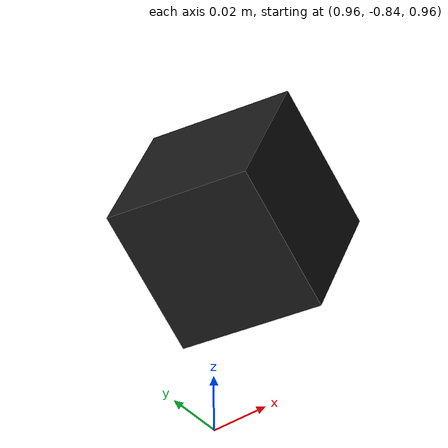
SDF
<?xml version="1.0" ?>
<sdf version="1.6">
  <world name="panda_demo">
    <physics name="1ms" type="ignored">
      <max_step_size>0.001</max_step_size>
      <real_time_factor>1.0</real_time_factor>
    </physics>

    <plugin filename="gz-sim-physics-system" name="gz::sim::systems::Physics"/>
    <plugin filename="gz-sim-scene-broadcaster-system" name="gz::sim::systems::SceneBroadcaster"/>
    <plugin filename="gz-sim-user-commands-system" name="gz::sim::systems::UserCommands"/>
    <plugin filename="gz-sim-sensors-system" name="gz::sim::systems::Sensors">
      <render_engine>ogre2</render_engine>
    </plugin>

    <light type="directional" name="sun">
      <cast_shadows>true</cast_shadows>
      <pose>0 0 10 0 0 0</pose>
      <diffuse>0.8 0.8 0.8 1</diffuse>
      <specular>0.2 0.2 0.2 1</specular>
      <attenuation>
        <range>1000</range>
        <constant>0.9</constant>
        <linear>0.01</linear>
        <quadratic>0.001</quadratic>
      </attenuation>
      <direction>-0.5 0.1 -0.9</direction>
    </light>

    <model name="ground_plane">
      <static>true</static>
      <link name="link">
        <collision name="collision">
          <geometry>
            <plane>
              <normal>0 0 1</normal>
              <size>100 100</size>
            </plane>
          </geometry>
        </collision>
        <visual name="visual">
          <geometry>
            <plane>
              <normal>0 0 1</normal>
              <size>100 100</size>
            </plane>
          </geometry>
          <material>
            <ambient>0.8 0.8 0.8 1</ambient>
            <diffuse>0.8 0.8 0.8 1</diffuse>
            <specular>0.8 0.8 0.8 1</specular>
          </material>
        </visual>
      </link>
    </model>

    <model name="static_camera">
      <static>true</static>
      <pose>1.0 -0.8 1.0 0 0.5 2.2</pose>
      <link name="camera_link">
        <visual name="body">
          <geometry>
            <box>
              <size>0.05 0.05 0.05</size>
            </box>
          </geometry>
          <material>
            <ambient>0.1 0.1 0.1 1</ambient>
            <diffuse>0.1 0.1 0.1 1</diffuse>
          </material>
        </visual>
        <sensor name="demo_camera" type="camera">
          <always_on>true</always_on>
          <update_rate>30</update_rate>
          <topic>/demo_camera/image</topic>
          <camera>
            <horizontal_fov>1.047</horizontal_fov>
            <image>
              <width>640</width>
              <height>480</height>
              <format>R8G8B8</format>
            </image>
            <clip>
              <near>0.1</near>
              <far>10</far>
            </clip>
          </camera>
        </sensor>
      </link>
    </model>
  </world>
</sdf>
